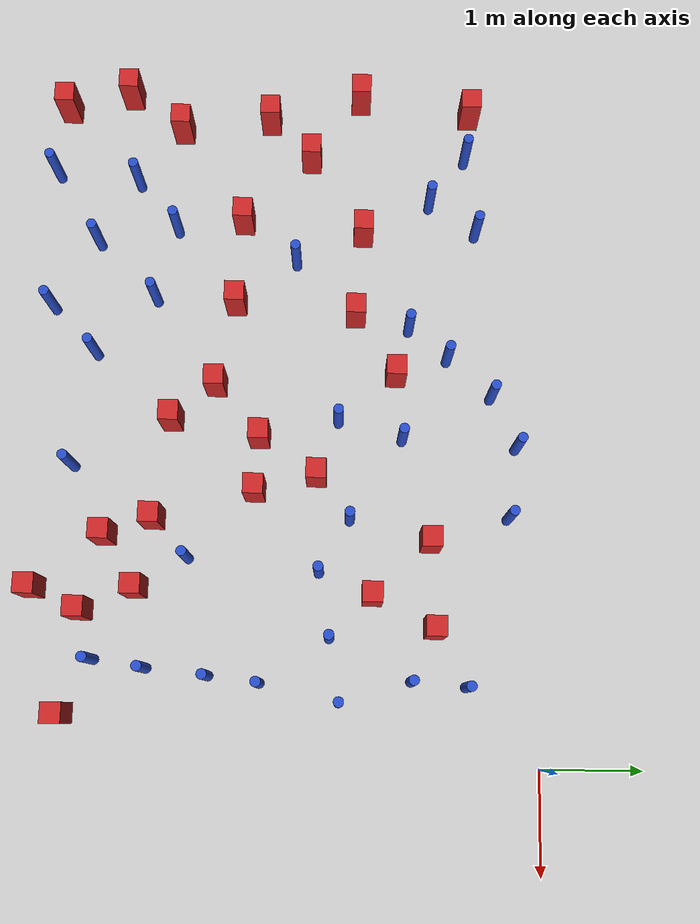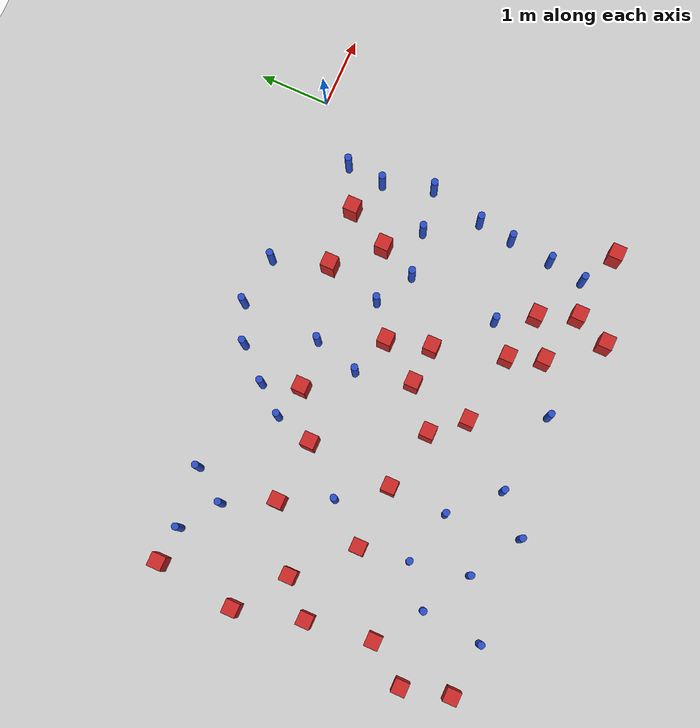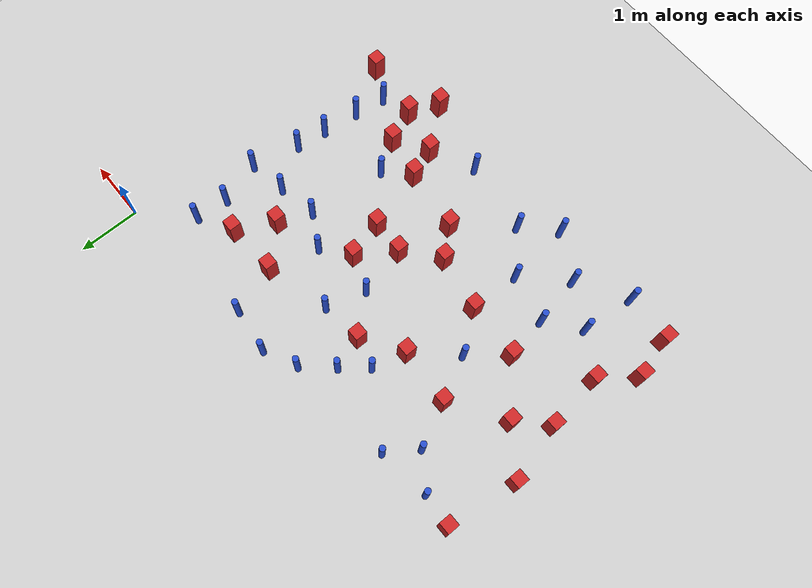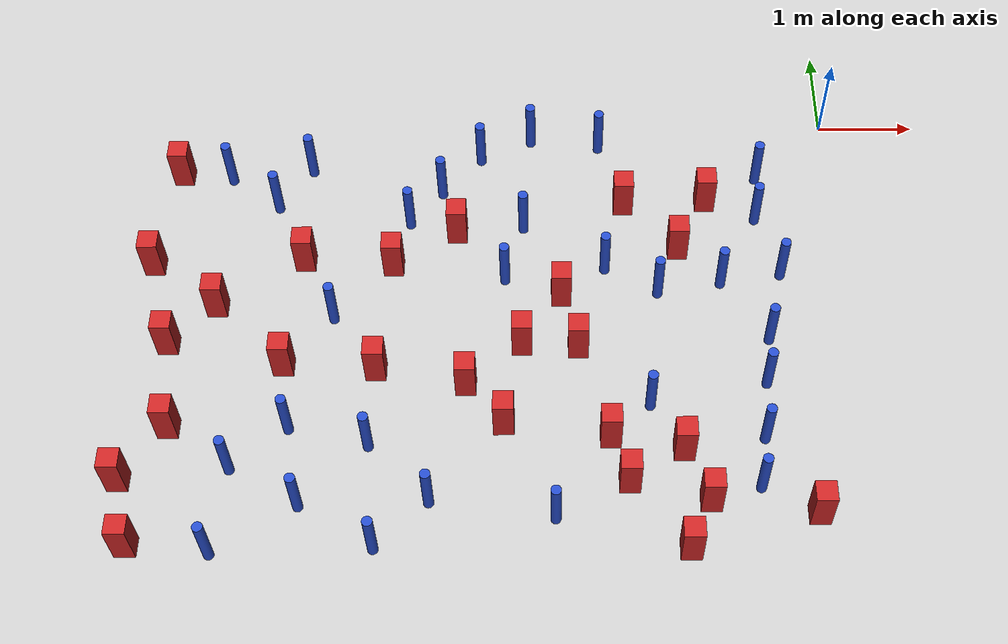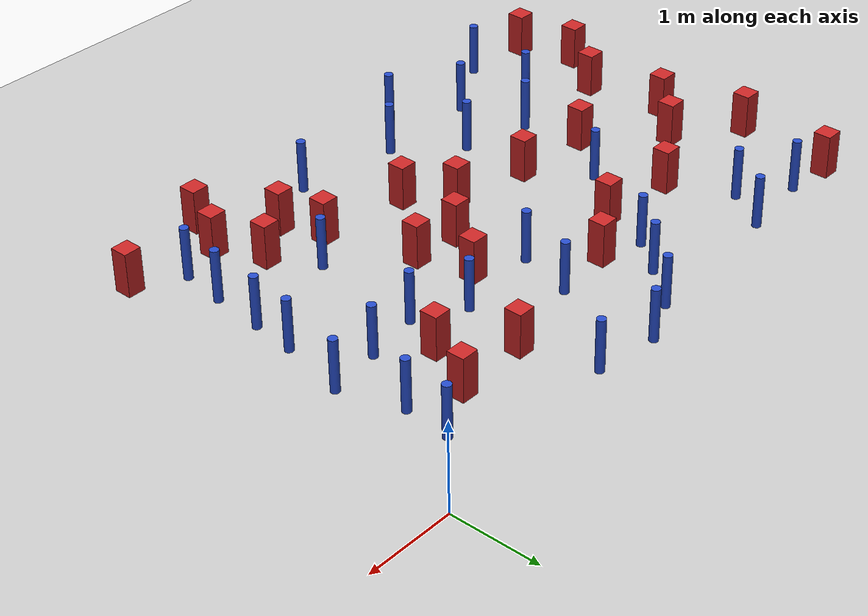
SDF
<sdf version="1.6">
 <world name="default">
  <model name="ground_plane">
   <static>1</static>
   <link name="link">
    <collision name="collision">
     <geometry><plane><normal>0 0 1</normal><size>100 100</size></plane></geometry>
     <surface><friction><ode><mu>100</mu><mu2>50</mu2></ode></friction></surface>
    </collision>
    <visual name="visual">
     <cast_shadows>0</cast_shadows>
     <geometry><plane><normal>0 0 1</normal><size>100 100</size></plane></geometry>
     <material>
      <ambient>1.0 1.0 1.0 1.0</ambient>
      <diffuse>0.8 0.8 0.8 1.0</diffuse>
      <specular>0.01 0.01 0.01 1.000000</specular>
     </material>
    </visual>
   </link>
  </model>
  <model name="pole_obstacle10">
   <static>true</static>
   <pose>-0.762527081774 -2.71304508485 -9.47619616065e-06 5.49618799737e-07 2.36310414066e-07 -1.55090534797e-07</pose>
   <link name="link">
    <pose>0 0 0.3 0 -0 0</pose>
    <inertial>
     <mass>1</mass>
     <inertia><ixx>0.145833</ixx><ixy>0</ixy><ixz>0</ixz><iyy>0.145833</iyy><iyz>0</iyz><izz>0.125</izz></inertia>
    </inertial>
    <collision name="collision">
     <geometry><cylinder><radius>0.05</radius><length>.6</length></cylinder></geometry>
    </collision>
    <visual name="visual">
     <geometry><cylinder><radius>0.05</radius><length>.6</length></cylinder></geometry>
     <material>
      <script><name>Gazebo/Blue</name><uri>file://media/materials/scripts/gazebo.material</uri></script>
     </material>
    </visual>
   </link>
  </model>
  <model name="square_post_obstacle21">
   <static>true</static>
   <pose>-6.27264287447 -2.32266422452 -6.11067671241e-07 -5.50515727128e-06 -8.79689657224e-07 2.37013304536e-05</pose>
   <link name="link">
    <pose>0 0 0.25 0 -0 0</pose>
    <inertial>
     <mass>100</mass>
     <inertia>
      <ixx>0.166667</ixx>
      <ixy>0</ixy>
      <ixz>0</ixz>
      <iyy>0.166667</iyy>
      <iyz>0</iyz>
      <izz>0.166667</izz>
     </inertia>
    </inertial>
    <collision name="collision"><geometry><box><size>.2 .2 .5</size></box></geometry></collision>
    <visual name="visual">
     <geometry><box><size>.2 .2 .5</size></box></geometry>
     <material>
      <script><name>Gazebo/Red</name><uri>file://media/materials/scripts/gazebo.material</uri></script>
     </material>
    </visual>
   </link>
  </model>
  <model name="pole_obstacle18">
   <static>true</static>
   <pose>-2.88940660347 -4.65598484103 -9.47619616065e-06 5.49618799738e-07 2.3631041406e-07 -1.55090534801e-07</pose>
   <link name="link">
    <pose>0 0 0.3 0 -0 0</pose>
    <inertial>
     <mass>1</mass>
     <inertia><ixx>0.145833</ixx><ixy>0</ixy><ixz>0</ixz><iyy>0.145833</iyy><iyz>0</iyz><izz>0.125</izz></inertia>
    </inertial>
    <collision name="collision">
     <geometry><cylinder><radius>0.05</radius><length>.6</length></cylinder></geometry>
    </collision>
    <visual name="visual">
     <geometry><cylinder><radius>0.05</radius><length>.6</length></cylinder></geometry>
     <material>
      <script><name>Gazebo/Blue</name><uri>file://media/materials/scripts/gazebo.material</uri></script>
     </material>
    </visual>
   </link>
  </model>
  <model name="pole_obstacle19">
   <static>true</static>
   <pose>-3.13910876527 -0.190163069557 -9.47619616065e-06 5.49618799737e-07 2.36310414076e-07 -1.55090534792e-07</pose>
   <link name="link">
    <pose>0 0 0.3 0 -0 0</pose>
    <inertial>
     <mass>1</mass>
     <inertia><ixx>0.145833</ixx><ixy>0</ixy><ixz>0</ixz><iyy>0.145833</iyy><iyz>0</iyz><izz>0.125</izz></inertia>
    </inertial>
    <collision name="collision">
     <geometry><cylinder><radius>0.05</radius><length>.6</length></cylinder></geometry>
    </collision>
    <visual name="visual">
     <geometry><cylinder><radius>0.05</radius><length>.6</length></cylinder></geometry>
     <material>
      <script><name>Gazebo/Blue</name><uri>file://media/materials/scripts/gazebo.material</uri></script>
     </material>
    </visual>
   </link>
  </model>
  <model name="pole_obstacle33">
   <static>true</static>
   <pose>-3.66587896424 -0.441717354994 -9.47619616065e-06 5.49618799737e-07 2.36310414038e-07 -1.55090534814e-07</pose>
   <link name="link">
    <pose>0 0 0.3 0 -0 0</pose>
    <inertial>
     <mass>1</mass>
     <inertia><ixx>0.145833</ixx><ixy>0</ixy><ixz>0</ixz><iyy>0.145833</iyy><iyz>0</iyz><izz>0.125</izz></inertia>
    </inertial>
    <collision name="collision">
     <geometry><cylinder><radius>0.05</radius><length>.6</length></cylinder></geometry>
    </collision>
    <visual name="visual">
     <geometry><cylinder><radius>0.05</radius><length>.6</length></cylinder></geometry>
     <material>
      <script><name>Gazebo/Blue</name><uri>file://media/materials/scripts/gazebo.material</uri></script>
     </material>
    </visual>
   </link>
  </model>
  <model name="pole_obstacle36">
   <static>true</static>
   <pose>-4.56441217744 -4.95893135616 -9.47619616065e-06 5.49618799737e-07 2.36310414037e-07 -1.55090534814e-07</pose>
   <link name="link">
    <pose>0 0 0.3 0 -0 0</pose>
    <inertial>
     <mass>1</mass>
     <inertia><ixx>0.145833</ixx><ixy>0</ixy><ixz>0</ixz><iyy>0.145833</iyy><iyz>0</iyz><izz>0.125</izz></inertia>
    </inertial>
    <collision name="collision">
     <geometry><cylinder><radius>0.05</radius><length>.6</length></cylinder></geometry>
    </collision>
    <visual name="visual">
     <geometry><cylinder><radius>0.05</radius><length>.6</length></cylinder></geometry>
     <material>
      <script><name>Gazebo/Blue</name><uri>file://media/materials/scripts/gazebo.material</uri></script>
     </material>
    </visual>
   </link>
  </model>
  <model name="square_post_obstacle36">
   <static>true</static>
   <pose>-1.65390976235 -4.96892115099 -6.11067671241e-07 -5.50515727128e-06 -8.79689657224e-07 2.37013304536e-05</pose>
   <link name="link">
    <pose>0 0 0.25 0 -0 0</pose>
    <inertial>
     <mass>100</mass>
     <inertia>
      <ixx>0.166667</ixx>
      <ixy>0</ixy>
      <ixz>0</ixz>
      <iyy>0.166667</iyy>
      <iyz>0</iyz>
      <izz>0.166667</izz>
     </inertia>
    </inertial>
    <collision name="collision"><geometry><box><size>.2 .2 .5</size></box></geometry></collision>
    <visual name="visual">
     <geometry><box><size>.2 .2 .5</size></box></geometry>
     <material>
      <script><name>Gazebo/Red</name><uri>file://media/materials/scripts/gazebo.material</uri></script>
     </material>
    </visual>
   </link>
  </model>
  <model name="pole_obstacle43">
   <static>true</static>
   <pose>-4.06319651542 -0.887867122076 -9.47619616065e-06 5.49618799737e-07 2.36310414061e-07 -1.550905348e-07</pose>
   <link name="link">
    <pose>0 0 0.3 0 -0 0</pose>
    <inertial>
     <mass>1</mass>
     <inertia><ixx>0.145833</ixx><ixy>0</ixy><ixz>0</ixz><iyy>0.145833</iyy><iyz>0</iyz><izz>0.125</izz></inertia>
    </inertial>
    <collision name="collision">
     <geometry><cylinder><radius>0.05</radius><length>.6</length></cylinder></geometry>
    </collision>
    <visual name="visual">
     <geometry><cylinder><radius>0.05</radius><length>.6</length></cylinder></geometry>
     <material>
      <script><name>Gazebo/Blue</name><uri>file://media/materials/scripts/gazebo.material</uri></script>
     </material>
    </visual>
   </link>
  </model>
  <model name="pole_obstacle44">
   <static>true</static>
   <pose>-0.590644551157 -1.93663211673 -9.47619616065e-06 5.49618799738e-07 2.36310414061e-07 -1.55090534801e-07</pose>
   <link name="link">
    <pose>0 0 0.3 0 -0 0</pose>
    <inertial>
     <mass>1</mass>
     <inertia><ixx>0.145833</ixx><ixy>0</ixy><ixz>0</ixz><iyy>0.145833</iyy><iyz>0</iyz><izz>0.125</izz></inertia>
    </inertial>
    <collision name="collision">
     <geometry><cylinder><radius>0.05</radius><length>.6</length></cylinder></geometry>
    </collision>
    <visual name="visual">
     <geometry><cylinder><radius>0.05</radius><length>.6</length></cylinder></geometry>
     <material>
      <script><name>Gazebo/Blue</name><uri>file://media/materials/scripts/gazebo.material</uri></script>
     </material>
    </visual>
   </link>
  </model>
  <model name="square_post_obstacle52">
   <static>true</static>
   <pose>-2.17368624097 -1.05751110527 -6.11067671241e-07 -5.50515727128e-06 -8.79689657224e-07 2.37013304536e-05</pose>
   <link name="link">
    <pose>0 0 0.25 0 -0 0</pose>
    <inertial>
     <mass>100</mass>
     <inertia>
      <ixx>0.166667</ixx>
      <ixy>0</ixy>
      <ixz>0</ixz>
      <iyy>0.166667</iyy>
      <iyz>0</iyz>
      <izz>0.166667</izz>
     </inertia>
    </inertial>
    <collision name="collision"><geometry><box><size>.2 .2 .5</size></box></geometry></collision>
    <visual name="visual">
     <geometry><box><size>.2 .2 .5</size></box></geometry>
     <material>
      <script><name>Gazebo/Red</name><uri>file://media/materials/scripts/gazebo.material</uri></script>
     </material>
    </visual>
   </link>
  </model>
  <model name="pole_obstacle51">
   <static>true</static>
   <pose>-5.09885625373 -2.45490323686 -9.47619616065e-06 5.49618799738e-07 2.36310414051e-07 -1.55090534805e-07</pose>
   <link name="link">
    <pose>0 0 0.3 0 -0 0</pose>
    <inertial>
     <mass>1</mass>
     <inertia><ixx>0.145833</ixx><ixy>0</ixy><ixz>0</ixz><iyy>0.145833</iyy><iyz>0</iyz><izz>0.125</izz></inertia>
    </inertial>
    <collision name="collision">
     <geometry><cylinder><radius>0.05</radius><length>.6</length></cylinder></geometry>
    </collision>
    <visual name="visual">
     <geometry><cylinder><radius>0.05</radius><length>.6</length></cylinder></geometry>
     <material>
      <script><name>Gazebo/Blue</name><uri>file://media/materials/scripts/gazebo.material</uri></script>
     </material>
    </visual>
   </link>
  </model>
  <model name="square_post_obstacle63">
   <static>true</static>
   <pose>-2.66006244372 -2.80937608905 -6.11067671241e-07 -5.50515727128e-06 -8.79689657224e-07 2.37013304536e-05</pose>
   <link name="link">
    <pose>0 0 0.25 0 -0 0</pose>
    <inertial>
     <mass>100</mass>
     <inertia>
      <ixx>0.166667</ixx>
      <ixy>0</ixy>
      <ixz>0</ixz>
      <iyy>0.166667</iyy>
      <iyz>0</iyz>
      <izz>0.166667</izz>
     </inertia>
    </inertial>
    <collision name="collision"><geometry><box><size>.2 .2 .5</size></box></geometry></collision>
    <visual name="visual">
     <geometry><box><size>.2 .2 .5</size></box></geometry>
     <material>
      <script><name>Gazebo/Red</name><uri>file://media/materials/scripts/gazebo.material</uri></script>
     </material>
    </visual>
   </link>
  </model>
  <model name="square_post_obstacle66">
   <static>true</static>
   <pose>-0.446047604808 -4.6206558313 -6.11067671241e-07 -5.50515727128e-06 -8.79689657224e-07 2.37013304536e-05</pose>
   <link name="link">
    <pose>0 0 0.25 0 -0 0</pose>
    <inertial>
     <mass>100</mass>
     <inertia>
      <ixx>0.166667</ixx>
      <ixy>0</ixy>
      <ixz>0</ixz>
      <iyy>0.166667</iyy>
      <iyz>0</iyz>
      <izz>0.166667</izz>
     </inertia>
    </inertial>
    <collision name="collision"><geometry><box><size>.2 .2 .5</size></box></geometry></collision>
    <visual name="visual">
     <geometry><box><size>.2 .2 .5</size></box></geometry>
     <material>
      <script><name>Gazebo/Red</name><uri>file://media/materials/scripts/gazebo.material</uri></script>
     </material>
    </visual>
   </link>
  </model>
  <model name="pole_obstacle67">
   <static>true</static>
   <pose>-5.45048588617 -0.590707836343 -9.47619616065e-06 5.49618799737e-07 2.36310414061e-07 -1.550905348e-07</pose>
   <link name="link">
    <pose>0 0 0.3 0 -0 0</pose>
    <inertial>
     <mass>1</mass>
     <inertia><ixx>0.145833</ixx><ixy>0</ixy><ixz>0</ixz><iyy>0.145833</iyy><iyz>0</iyz><izz>0.125</izz></inertia>
    </inertial>
    <collision name="collision">
     <geometry><cylinder><radius>0.05</radius><length>.6</length></cylinder></geometry>
    </collision>
    <visual name="visual">
     <geometry><cylinder><radius>0.05</radius><length>.6</length></cylinder></geometry>
     <material>
      <script><name>Gazebo/Blue</name><uri>file://media/materials/scripts/gazebo.material</uri></script>
     </material>
    </visual>
   </link>
  </model>
  <model name="pole_obstacle68">
   <static>true</static>
   <pose>-4.67126712238 -3.89984883947 -9.47619616065e-06 5.49618799738e-07 2.36310414051e-07 -1.55090534805e-07</pose>
   <link name="link">
    <pose>0 0 0.3 0 -0 0</pose>
    <inertial>
     <mass>1</mass>
     <inertia><ixx>0.145833</ixx><ixy>0</ixy><ixz>0</ixz><iyy>0.145833</iyy><iyz>0</iyz><izz>0.125</izz></inertia>
    </inertial>
    <collision name="collision">
     <geometry><cylinder><radius>0.05</radius><length>.6</length></cylinder></geometry>
    </collision>
    <visual name="visual">
     <geometry><cylinder><radius>0.05</radius><length>.6</length></cylinder></geometry>
     <material>
      <script><name>Gazebo/Blue</name><uri>file://media/materials/scripts/gazebo.material</uri></script>
     </material>
    </visual>
   </link>
  </model>
  <model name="pole_obstacle70">
   <static>true</static>
   <pose>-1.20762585771 -2.03953762843 -9.47619616065e-06 5.49618799738e-07 2.36310414048e-07 -1.55090534806e-07</pose>
   <link name="link">
    <pose>0 0 0.3 0 -0 0</pose>
    <inertial>
     <mass>1</mass>
     <inertia><ixx>0.145833</ixx><ixy>0</ixy><ixz>0</ixz><iyy>0.145833</iyy><iyz>0</iyz><izz>0.125</izz></inertia>
    </inertial>
    <collision name="collision">
     <geometry><cylinder><radius>0.05</radius><length>.6</length></cylinder></geometry>
    </collision>
    <visual name="visual">
     <geometry><cylinder><radius>0.05</radius><length>.6</length></cylinder></geometry>
     <material>
      <script><name>Gazebo/Blue</name><uri>file://media/materials/scripts/gazebo.material</uri></script>
     </material>
    </visual>
   </link>
  </model>
  <model name="pole_obstacle97">
   <static>true</static>
   <pose>-0.801064155136 -1.23712875148 -9.47619616065e-06 5.49618799738e-07 2.36310414061e-07 -1.55090534801e-07</pose>
   <link name="link">
    <pose>0 0 0.3 0 -0 0</pose>
    <inertial>
     <mass>1</mass>
     <inertia><ixx>0.145833</ixx><ixy>0</ixy><ixz>0</ixz><iyy>0.145833</iyy><iyz>0</iyz><izz>0.125</izz></inertia>
    </inertial>
    <collision name="collision">
     <geometry><cylinder><radius>0.05</radius><length>.6</length></cylinder></geometry>
    </collision>
    <visual name="visual">
     <geometry><cylinder><radius>0.05</radius><length>.6</length></cylinder></geometry>
     <material>
      <script><name>Gazebo/Blue</name><uri>file://media/materials/scripts/gazebo.material</uri></script>
     </material>
    </visual>
   </link>
  </model>
  <model name="pole_obstacle99">
   <static>true</static>
   <pose>-5.28739939241 -4.52884158383 -9.47619616065e-06 5.49618799737e-07 2.36310414037e-07 -1.55090534814e-07</pose>
   <link name="link">
    <pose>0 0 0.3 0 -0 0</pose>
    <inertial>
     <mass>1</mass>
     <inertia><ixx>0.145833</ixx><ixy>0</ixy><ixz>0</ixz><iyy>0.145833</iyy><iyz>0</iyz><izz>0.125</izz></inertia>
    </inertial>
    <collision name="collision">
     <geometry><cylinder><radius>0.05</radius><length>.6</length></cylinder></geometry>
    </collision>
    <visual name="visual">
     <geometry><cylinder><radius>0.05</radius><length>.6</length></cylinder></geometry>
     <material>
      <script><name>Gazebo/Blue</name><uri>file://media/materials/scripts/gazebo.material</uri></script>
     </material>
    </visual>
   </link>
  </model>
  <model name="square_post_obstacle88">
   <static>true</static>
   <pose>-4.52882801511 -1.83013000693 -6.11067671241e-07 -5.50515727128e-06 -8.79689657224e-07 2.37013304536e-05</pose>
   <link name="link">
    <pose>0 0 0.25 0 -0 0</pose>
    <inertial>
     <mass>100</mass>
     <inertia>
      <ixx>0.166667</ixx>
      <ixy>0</ixy>
      <ixz>0</ixz>
      <iyy>0.166667</iyy>
      <iyz>0</iyz>
      <izz>0.166667</izz>
     </inertia>
    </inertial>
    <collision name="collision"><geometry><box><size>.2 .2 .5</size></box></geometry></collision>
    <visual name="visual">
     <geometry><box><size>.2 .2 .5</size></box></geometry>
     <material>
      <script><name>Gazebo/Red</name><uri>file://media/materials/scripts/gazebo.material</uri></script>
     </material>
    </visual>
   </link>
  </model>
  <model name="square_post_obstacle91">
   <static>true</static>
   <pose>-6.59087233438 -3.70005445975 -6.11067671241e-07 -5.50515727128e-06 -8.79689657224e-07 2.37013304536e-05</pose>
   <link name="link">
    <pose>0 0 0.25 0 -0 0</pose>
    <inertial>
     <mass>100</mass>
     <inertia>
      <ixx>0.166667</ixx>
      <ixy>0</ixy>
      <ixz>0</ixz>
      <iyy>0.166667</iyy>
      <iyz>0</iyz>
      <izz>0.166667</izz>
     </inertia>
    </inertial>
    <collision name="collision"><geometry><box><size>.2 .2 .5</size></box></geometry></collision>
    <visual name="visual">
     <geometry><box><size>.2 .2 .5</size></box></geometry>
     <material>
      <script><name>Gazebo/Red</name><uri>file://media/materials/scripts/gazebo.material</uri></script>
     </material>
    </visual>
   </link>
  </model>
  <model name="pole_obstacle106">
   <static>true</static>
   <pose>-2.37937970633 -1.85859474188 -9.47619616065e-06 5.49618799737e-07 2.36310414072e-07 -1.55090534793e-07</pose>
   <link name="link">
    <pose>0 0 0.3 0 -0 0</pose>
    <inertial>
     <mass>1</mass>
     <inertia><ixx>0.145833</ixx><ixy>0</ixy><ixz>0</ixz><iyy>0.145833</iyy><iyz>0</iyz><izz>0.125</izz></inertia>
    </inertial>
    <collision name="collision">
     <geometry><cylinder><radius>0.05</radius><length>.6</length></cylinder></geometry>
    </collision>
    <visual name="visual">
     <geometry><cylinder><radius>0.05</radius><length>.6</length></cylinder></geometry>
     <material>
      <script><name>Gazebo/Blue</name><uri>file://media/materials/scripts/gazebo.material</uri></script>
     </material>
    </visual>
   </link>
  </model>
  <model name="pole_obstacle109">
   <static>true</static>
   <pose>-3.20994855711 -1.34086780825 -9.47619616065e-06 5.49618799737e-07 2.36310414072e-07 -1.55090534793e-07</pose>
   <link name="link">
    <pose>0 0 0.3 0 -0 0</pose>
    <inertial>
     <mass>1</mass>
     <inertia><ixx>0.145833</ixx><ixy>0</ixy><ixz>0</ixz><iyy>0.145833</iyy><iyz>0</iyz><izz>0.125</izz></inertia>
    </inertial>
    <collision name="collision">
     <geometry><cylinder><radius>0.05</radius><length>.6</length></cylinder></geometry>
    </collision>
    <visual name="visual">
     <geometry><cylinder><radius>0.05</radius><length>.6</length></cylinder></geometry>
     <material>
      <script><name>Gazebo/Blue</name><uri>file://media/materials/scripts/gazebo.material</uri></script>
     </material>
    </visual>
   </link>
  </model>
  <model name="square_post_obstacle98">
   <static>true</static>
   <pose>-1.31746512262 -1.01475249501 -6.11067671241e-07 -5.50515727128e-06 -8.79689657224e-07 2.37013304536e-05</pose>
   <link name="link">
    <pose>0 0 0.25 0 -0 0</pose>
    <inertial>
     <mass>100</mass>
     <inertia>
      <ixx>0.166667</ixx>
      <ixy>0</ixy>
      <ixz>0</ixz>
      <iyy>0.166667</iyy>
      <iyz>0</iyz>
      <izz>0.166667</izz>
     </inertia>
    </inertial>
    <collision name="collision"><geometry><box><size>.2 .2 .5</size></box></geometry></collision>
    <visual name="visual">
     <geometry><box><size>.2 .2 .5</size></box></geometry>
     <material>
      <script><name>Gazebo/Red</name><uri>file://media/materials/scripts/gazebo.material</uri></script>
     </material>
    </visual>
   </link>
  </model>
  <model name="pole_obstacle111">
   <static>true</static>
   <pose>-3.39226416148 -1.98709167912 -9.47619616065e-06 5.49618799737e-07 2.3631041407e-07 -1.55090534794e-07</pose>
   <link name="link">
    <pose>0 0 0.3 0 -0 0</pose>
    <inertial>
     <mass>1</mass>
     <inertia><ixx>0.145833</ixx><ixy>0</ixy><ixz>0</ixz><iyy>0.145833</iyy><iyz>0</iyz><izz>0.125</izz></inertia>
    </inertial>
    <collision name="collision">
     <geometry><cylinder><radius>0.05</radius><length>.6</length></cylinder></geometry>
    </collision>
    <visual name="visual">
     <geometry><cylinder><radius>0.05</radius><length>.6</length></cylinder></geometry>
     <material>
      <script><name>Gazebo/Blue</name><uri>file://media/materials/scripts/gazebo.material</uri></script>
     </material>
    </visual>
   </link>
  </model>
  <model name="square_post_obstacle104">
   <static>true</static>
   <pose>-1.63022687932 -1.62762404748 -6.11067671241e-07 -5.50515727128e-06 -8.79689657224e-07 2.37013304536e-05</pose>
   <link name="link">
    <pose>0 0 0.25 0 -0 0</pose>
    <inertial>
     <mass>100</mass>
     <inertia>
      <ixx>0.166667</ixx>
      <ixy>0</ixy>
      <ixz>0</ixz>
      <iyy>0.166667</iyy>
      <iyz>0</iyz>
      <izz>0.166667</izz>
     </inertia>
    </inertial>
    <collision name="collision"><geometry><box><size>.2 .2 .5</size></box></geometry></collision>
    <visual name="visual">
     <geometry><box><size>.2 .2 .5</size></box></geometry>
     <material>
      <script><name>Gazebo/Red</name><uri>file://media/materials/scripts/gazebo.material</uri></script>
     </material>
    </visual>
   </link>
  </model>
  <model name="square_post_obstacle110">
   <static>true</static>
   <pose>-2.82441463042 -2.19778586457 -6.11067671241e-07 -5.50515727128e-06 -8.79689657224e-07 2.37013304536e-05</pose>
   <link name="link">
    <pose>0 0 0.25 0 -0 0</pose>
    <inertial>
     <mass>100</mass>
     <inertia>
      <ixx>0.166667</ixx>
      <ixy>0</ixy>
      <ixz>0</ixz>
      <iyy>0.166667</iyy>
      <iyz>0</iyz>
      <izz>0.166667</izz>
     </inertia>
    </inertial>
    <collision name="collision"><geometry><box><size>.2 .2 .5</size></box></geometry></collision>
    <visual name="visual">
     <geometry><box><size>.2 .2 .5</size></box></geometry>
     <material>
      <script><name>Gazebo/Red</name><uri>file://media/materials/scripts/gazebo.material</uri></script>
     </material>
    </visual>
   </link>
  </model>
  <model name="square_post_obstacle114">
   <static>true</static>
   <pose>-5.54897705205 -3.01432559239 -6.11067671241e-07 -5.50515727128e-06 -8.79689657224e-07 2.37013304536e-05</pose>
   <link name="link">
    <pose>0 0 0.25 0 -0 0</pose>
    <inertial>
     <mass>100</mass>
     <inertia>
      <ixx>0.166667</ixx>
      <ixy>0</ixy>
      <ixz>0</ixz>
      <iyy>0.166667</iyy>
      <iyz>0</iyz>
      <izz>0.166667</izz>
     </inertia>
    </inertial>
    <collision name="collision"><geometry><box><size>.2 .2 .5</size></box></geometry></collision>
    <visual name="visual">
     <geometry><box><size>.2 .2 .5</size></box></geometry>
     <material>
      <script><name>Gazebo/Red</name><uri>file://media/materials/scripts/gazebo.material</uri></script>
     </material>
    </visual>
   </link>
  </model>
  <model name="pole_obstacle132">
   <static>true</static>
   <pose>-2.41749561613 -0.277826415895 -9.4761961606e-06 5.49618799729e-07 2.36310414007e-07 -1.55090534821e-07</pose>
   <link name="link">
    <pose>0 0 0.3 0 -0 0</pose>
    <inertial>
     <mass>1</mass>
     <inertia><ixx>0.145833</ixx><ixy>0</ixy><ixz>0</ixz><iyy>0.145833</iyy><iyz>0</iyz><izz>0.125</izz></inertia>
    </inertial>
    <collision name="collision">
     <geometry><cylinder><radius>0.05</radius><length>.6</length></cylinder></geometry>
    </collision>
    <visual name="visual">
     <geometry><cylinder><radius>0.05</radius><length>.6</length></cylinder></geometry>
     <material>
      <script><name>Gazebo/Blue</name><uri>file://media/materials/scripts/gazebo.material</uri></script>
     </material>
    </visual>
   </link>
  </model>
  <model name="pole_obstacle135">
   <static>true</static>
   <pose>-1.97019567955 -3.45973512906 -9.47619616065e-06 5.49618799737e-07 2.36310414076e-07 -1.55090534791e-07</pose>
   <link name="link">
    <pose>0 0 0.3 0 -0 0</pose>
    <inertial>
     <mass>1</mass>
     <inertia><ixx>0.145833</ixx><ixy>0</ixy><ixz>0</ixz><iyy>0.145833</iyy><iyz>0</iyz><izz>0.125</izz></inertia>
    </inertial>
    <collision name="collision">
     <geometry><cylinder><radius>0.05</radius><length>.6</length></cylinder></geometry>
    </collision>
    <visual name="visual">
     <geometry><cylinder><radius>0.05</radius><length>.6</length></cylinder></geometry>
     <material>
      <script><name>Gazebo/Blue</name><uri>file://media/materials/scripts/gazebo.material</uri></script>
     </material>
    </visual>
   </link>
  </model>
  <model name="square_post_obstacle118">
   <static>true</static>
   <pose>-6.81348807993 -0.652634966448 -6.11067671241e-07 -5.50515727128e-06 -8.79689657224e-07 2.37013304536e-05</pose>
   <link name="link">
    <pose>0 0 0.25 0 -0 0</pose>
    <inertial>
     <mass>100</mass>
     <inertia>
      <ixx>0.166667</ixx>
      <ixy>0</ixy>
      <ixz>0</ixz>
      <iyy>0.166667</iyy>
      <iyz>0</iyz>
      <izz>0.166667</izz>
     </inertia>
    </inertial>
    <collision name="collision"><geometry><box><size>.2 .2 .5</size></box></geometry></collision>
    <visual name="visual">
     <geometry><box><size>.2 .2 .5</size></box></geometry>
     <material>
      <script><name>Gazebo/Red</name><uri>file://media/materials/scripts/gazebo.material</uri></script>
     </material>
    </visual>
   </link>
  </model>
  <model name="square_post_obstacle119">
   <static>true</static>
   <pose>-3.75686245181 -3.24042022437 -6.11067671241e-07 -5.50515727128e-06 -8.79689657224e-07 2.37013304536e-05</pose>
   <link name="link">
    <pose>0 0 0.25 0 -0 0</pose>
    <inertial>
     <mass>100</mass>
     <inertia>
      <ixx>0.166667</ixx>
      <ixy>0</ixy>
      <ixz>0</ixz>
      <iyy>0.166667</iyy>
      <iyz>0</iyz>
      <izz>0.166667</izz>
     </inertia>
    </inertial>
    <collision name="collision"><geometry><box><size>.2 .2 .5</size></box></geometry></collision>
    <visual name="visual">
     <geometry><box><size>.2 .2 .5</size></box></geometry>
     <material>
      <script><name>Gazebo/Red</name><uri>file://media/materials/scripts/gazebo.material</uri></script>
     </material>
    </visual>
   </link>
  </model>
  <model name="square_post_obstacle120">
   <static>true</static>
   <pose>-1.66895569411 -3.95183333278 -6.11067671241e-07 -5.50515727128e-06 -8.79689657224e-07 2.37013304536e-05</pose>
   <link name="link">
    <pose>0 0 0.25 0 -0 0</pose>
    <inertial>
     <mass>100</mass>
     <inertia>
      <ixx>0.166667</ixx>
      <ixy>0</ixy>
      <ixz>0</ixz>
      <iyy>0.166667</iyy>
      <iyz>0</iyz>
      <izz>0.166667</izz>
     </inertia>
    </inertial>
    <collision name="collision"><geometry><box><size>.2 .2 .5</size></box></geometry></collision>
    <visual name="visual">
     <geometry><box><size>.2 .2 .5</size></box></geometry>
     <material>
      <script><name>Gazebo/Red</name><uri>file://media/materials/scripts/gazebo.material</uri></script>
     </material>
    </visual>
   </link>
  </model>
  <model name="square_post_obstacle122">
   <static>true</static>
   <pose>-3.38270355711 -3.67146647143 -6.11067671241e-07 -5.50515727128e-06 -8.79689657224e-07 2.37013304536e-05</pose>
   <link name="link">
    <pose>0 0 0.25 0 -0 0</pose>
    <inertial>
     <mass>100</mass>
     <inertia>
      <ixx>0.166667</ixx>
      <ixy>0</ixy>
      <ixz>0</ixz>
      <iyy>0.166667</iyy>
      <iyz>0</iyz>
      <izz>0.166667</izz>
     </inertia>
    </inertial>
    <collision name="collision"><geometry><box><size>.2 .2 .5</size></box></geometry></collision>
    <visual name="visual">
     <geometry><box><size>.2 .2 .5</size></box></geometry>
     <material>
      <script><name>Gazebo/Red</name><uri>file://media/materials/scripts/gazebo.material</uri></script>
     </material>
    </visual>
   </link>
  </model>
  <model name="square_post_obstacle127">
   <static>true</static>
   <pose>-6.98967493398 -4.2656787429 -6.11067671241e-07 -5.50515727128e-06 -8.79689657224e-07 2.37013304536e-05</pose>
   <link name="link">
    <pose>0 0 0.25 0 -0 0</pose>
    <inertial>
     <mass>100</mass>
     <inertia>
      <ixx>0.166667</ixx>
      <ixy>0</ixy>
      <ixz>0</ixz>
      <iyy>0.166667</iyy>
      <iyz>0</iyz>
      <izz>0.166667</izz>
     </inertia>
    </inertial>
    <collision name="collision"><geometry><box><size>.2 .2 .5</size></box></geometry></collision>
    <visual name="visual">
     <geometry><box><size>.2 .2 .5</size></box></geometry>
     <material>
      <script><name>Gazebo/Red</name><uri>file://media/materials/scripts/gazebo.material</uri></script>
     </material>
    </visual>
   </link>
  </model>
  <model name="square_post_obstacle129">
   <static>true</static>
   <pose>-5.43255964642 -1.7643295552 -6.11067671241e-07 -5.50515727128e-06 -8.79689657224e-07 2.37013304536e-05</pose>
   <link name="link">
    <pose>0 0 0.25 0 -0 0</pose>
    <inertial>
     <mass>100</mass>
     <inertia>
      <ixx>0.166667</ixx>
      <ixy>0</ixy>
      <ixz>0</ixz>
      <iyy>0.166667</iyy>
      <iyz>0</iyz>
      <izz>0.166667</izz>
     </inertia>
    </inertial>
    <collision name="collision"><geometry><box><size>.2 .2 .5</size></box></geometry></collision>
    <visual name="visual">
     <geometry><box><size>.2 .2 .5</size></box></geometry>
     <material>
      <script><name>Gazebo/Red</name><uri>file://media/materials/scripts/gazebo.material</uri></script>
     </material>
    </visual>
   </link>
  </model>
  <model name="pole_obstacle142">
   <static>true</static>
   <pose>-4.38366672911 -1.28236994958 -9.47619616065e-06 5.49618799738e-07 2.36310414071e-07 -1.55090534796e-07</pose>
   <link name="link">
    <pose>0 0 0.3 0 -0 0</pose>
    <inertial>
     <mass>1</mass>
     <inertia><ixx>0.145833</ixx><ixy>0</ixy><ixz>0</ixz><iyy>0.145833</iyy><iyz>0</iyz><izz>0.125</izz></inertia>
    </inertial>
    <collision name="collision">
     <geometry><cylinder><radius>0.05</radius><length>.6</length></cylinder></geometry>
    </collision>
    <visual name="visual">
     <geometry><cylinder><radius>0.05</radius><length>.6</length></cylinder></geometry>
     <material>
      <script><name>Gazebo/Blue</name><uri>file://media/materials/scripts/gazebo.material</uri></script>
     </material>
    </visual>
   </link>
  </model>
  <model name="square_post_obstacle143">
   <static>true</static>
   <pose>-2.19420422495 -4.28955291842 -6.11067671241e-07 -5.50515727128e-06 -8.79689657224e-07 2.37013304536e-05</pose>
   <link name="link">
    <pose>0 0 0.25 0 -0 0</pose>
    <inertial>
     <mass>100</mass>
     <inertia>
      <ixx>0.166667</ixx>
      <ixy>0</ixy>
      <ixz>0</ixz>
      <iyy>0.166667</iyy>
      <iyz>0</iyz>
      <izz>0.166667</izz>
     </inertia>
    </inertial>
    <collision name="collision"><geometry><box><size>.2 .2 .5</size></box></geometry></collision>
    <visual name="visual">
     <geometry><box><size>.2 .2 .5</size></box></geometry>
     <material>
      <script><name>Gazebo/Red</name><uri>file://media/materials/scripts/gazebo.material</uri></script>
     </material>
    </visual>
   </link>
  </model>
  <model name="pole_obstacle155">
   <static>true</static>
   <pose>-6.2956409207 -0.700075677641 -9.47619616065e-06 5.49618799737e-07 2.36310414061e-07 -1.550905348e-07</pose>
   <link name="link">
    <pose>0 0 0.3 0 -0 0</pose>
    <inertial>
     <mass>1</mass>
     <inertia><ixx>0.145833</ixx><ixy>0</ixy><ixz>0</ixz><iyy>0.145833</iyy><iyz>0</iyz><izz>0.125</izz></inertia>
    </inertial>
    <collision name="collision">
     <geometry><cylinder><radius>0.05</radius><length>.6</length></cylinder></geometry>
    </collision>
    <visual name="visual">
     <geometry><cylinder><radius>0.05</radius><length>.6</length></cylinder></geometry>
     <material>
      <script><name>Gazebo/Blue</name><uri>file://media/materials/scripts/gazebo.material</uri></script>
     </material>
    </visual>
   </link>
  </model>
  <model name="pole_obstacle176">
   <static>true</static>
   <pose>-5.44651369368 -3.7132350492 -9.47619616065e-06 5.49618799738e-07 2.36310414051e-07 -1.55090534805e-07</pose>
   <link name="link">
    <pose>0 0 0.3 0 -0 0</pose>
    <inertial>
     <mass>1</mass>
     <inertia><ixx>0.145833</ixx><ixy>0</ixy><ixz>0</ixz><iyy>0.145833</iyy><iyz>0</iyz><izz>0.125</izz></inertia>
    </inertial>
    <collision name="collision">
     <geometry><cylinder><radius>0.05</radius><length>.6</length></cylinder></geometry>
    </collision>
    <visual name="visual">
     <geometry><cylinder><radius>0.05</radius><length>.6</length></cylinder></geometry>
     <material>
      <script><name>Gazebo/Blue</name><uri>file://media/materials/scripts/gazebo.material</uri></script>
     </material>
    </visual>
   </link>
  </model>
  <model name="pole_obstacle179">
   <static>true</static>
   <pose>-6.05857236577 -5.00855887609 -9.47619616065e-06 5.49618799737e-07 2.36310414037e-07 -1.55090534814e-07</pose>
   <link name="link">
    <pose>0 0 0.3 0 -0 0</pose>
    <inertial>
     <mass>1</mass>
     <inertia><ixx>0.145833</ixx><ixy>0</ixy><ixz>0</ixz><iyy>0.145833</iyy><iyz>0</iyz><izz>0.125</izz></inertia>
    </inertial>
    <collision name="collision">
     <geometry><cylinder><radius>0.05</radius><length>.6</length></cylinder></geometry>
    </collision>
    <visual name="visual">
     <geometry><cylinder><radius>0.05</radius><length>.6</length></cylinder></geometry>
     <material>
      <script><name>Gazebo/Blue</name><uri>file://media/materials/scripts/gazebo.material</uri></script>
     </material>
    </visual>
   </link>
  </model>
  <model name="square_post_obstacle170">
   <static>true</static>
   <pose>-1.44357810413 -4.48357871199 -6.11067671241e-07 -5.50515727128e-06 -8.79689657224e-07 2.37013304536e-05</pose>
   <link name="link">
    <pose>0 0 0.25 0 -0 0</pose>
    <inertial>
     <mass>100</mass>
     <inertia>
      <ixx>0.166667</ixx>
      <ixy>0</ixy>
      <ixz>0</ixz>
      <iyy>0.166667</iyy>
      <iyz>0</iyz>
      <izz>0.166667</izz>
     </inertia>
    </inertial>
    <collision name="collision"><geometry><box><size>.2 .2 .5</size></box></geometry></collision>
    <visual name="visual">
     <geometry><box><size>.2 .2 .5</size></box></geometry>
     <material>
      <script><name>Gazebo/Red</name><uri>file://media/materials/scripts/gazebo.material</uri></script>
     </material>
    </visual>
   </link>
  </model>
  <model name="square_post_obstacle172">
   <static>true</static>
   <pose>-6.96872891381 -1.80899147446 -6.11067671241e-07 -5.50515727128e-06 -8.79689657224e-07 2.37013304536e-05</pose>
   <link name="link">
    <pose>0 0 0.25 0 -0 0</pose>
    <inertial>
     <mass>100</mass>
     <inertia>
      <ixx>0.166667</ixx>
      <ixy>0</ixy>
      <ixz>0</ixz>
      <iyy>0.166667</iyy>
      <iyz>0</iyz>
      <izz>0.166667</izz>
     </inertia>
    </inertial>
    <collision name="collision"><geometry><box><size>.2 .2 .5</size></box></geometry></collision>
    <visual name="visual">
     <geometry><box><size>.2 .2 .5</size></box></geometry>
     <material>
      <script><name>Gazebo/Red</name><uri>file://media/materials/scripts/gazebo.material</uri></script>
     </material>
    </visual>
   </link>
  </model>
  <model name="pole_obstacle187">
   <static>true</static>
   <pose>-4.07294539654 -4.49157291161 -9.47619616065e-06 5.49618799737e-07 2.36310414037e-07 -1.55090534814e-07</pose>
   <link name="link">
    <pose>0 0 0.3 0 -0 0</pose>
    <inertial>
     <mass>1</mass>
     <inertia><ixx>0.145833</ixx><ixy>0</ixy><ixz>0</ixz><iyy>0.145833</iyy><iyz>0</iyz><izz>0.125</izz></inertia>
    </inertial>
    <collision name="collision">
     <geometry><cylinder><radius>0.05</radius><length>.6</length></cylinder></geometry>
    </collision>
    <visual name="visual">
     <geometry><cylinder><radius>0.05</radius><length>.6</length></cylinder></geometry>
     <material>
      <script><name>Gazebo/Blue</name><uri>file://media/materials/scripts/gazebo.material</uri></script>
     </material>
    </visual>
   </link>
  </model>
  <model name="square_post_obstacle182">
   <static>true</static>
   <pose>-4.64034781352 -3.06660638012 -6.11067671241e-07 -5.50515727128e-06 -8.79689657224e-07 2.37013304536e-05</pose>
   <link name="link">
    <pose>0 0 0.25 0 -0 0</pose>
    <inertial>
     <mass>100</mass>
     <inertia>
      <ixx>0.166667</ixx>
      <ixy>0</ixy>
      <ixz>0</ixz>
      <iyy>0.166667</iyy>
      <iyz>0</iyz>
      <izz>0.166667</izz>
     </inertia>
    </inertial>
    <collision name="collision"><geometry><box><size>.2 .2 .5</size></box></geometry></collision>
    <visual name="visual">
     <geometry><box><size>.2 .2 .5</size></box></geometry>
     <material>
      <script><name>Gazebo/Red</name><uri>file://media/materials/scripts/gazebo.material</uri></script>
     </material>
    </visual>
   </link>
  </model>
  <model name="square_post_obstacle185">
   <static>true</static>
   <pose>-3.89090580124 -1.412652101 -6.11067671241e-07 -5.50515727128e-06 -8.79689657224e-07 2.37013304536e-05</pose>
   <link name="link">
    <pose>0 0 0.25 0 -0 0</pose>
    <inertial>
     <mass>100</mass>
     <inertia>
      <ixx>0.166667</ixx>
      <ixy>0</ixy>
      <ixz>0</ixz>
      <iyy>0.166667</iyy>
      <iyz>0</iyz>
      <izz>0.166667</izz>
     </inertia>
    </inertial>
    <collision name="collision"><geometry><box><size>.2 .2 .5</size></box></geometry></collision>
    <visual name="visual">
     <geometry><box><size>.2 .2 .5</size></box></geometry>
     <material>
      <script><name>Gazebo/Red</name><uri>file://media/materials/scripts/gazebo.material</uri></script>
     </material>
    </visual>
   </link>
  </model>
  <model name="square_post_obstacle190">
   <static>true</static>
   <pose>-6.71075181332 -2.76503028791 -6.11067671241e-07 -5.50515727128e-06 -8.79689657224e-07 2.37013304536e-05</pose>
   <link name="link">
    <pose>0 0 0.25 0 -0 0</pose>
    <inertial>
     <mass>100</mass>
     <inertia>
      <ixx>0.166667</ixx>
      <ixy>0</ixy>
      <ixz>0</ixz>
      <iyy>0.166667</iyy>
      <iyz>0</iyz>
      <izz>0.166667</izz>
     </inertia>
    </inertial>
    <collision name="collision"><geometry><box><size>.2 .2 .5</size></box></geometry></collision>
    <visual name="visual">
     <geometry><box><size>.2 .2 .5</size></box></geometry>
     <material>
      <script><name>Gazebo/Red</name><uri>file://media/materials/scripts/gazebo.material</uri></script>
     </material>
    </visual>
   </link>
  </model>
  <model name="pole_obstacle190">
   <static>true</static>
   <pose>-0.962485891067 -4.3423703005 -9.47619616065e-06 5.49618799737e-07 2.36310414066e-07 -1.55090534796e-07</pose>
   <link name="link">
    <pose>0 0 0.3 0 -0 0</pose>
    <inertial>
     <mass>1</mass>
     <inertia><ixx>0.145833</ixx><ixy>0</ixy><ixz>0</ixz><iyy>0.145833</iyy><iyz>0</iyz><izz>0.125</izz></inertia>
    </inertial>
    <collision name="collision">
     <geometry><cylinder><radius>0.05</radius><length>.6</length></cylinder></geometry>
    </collision>
    <visual name="visual">
     <geometry><cylinder><radius>0.05</radius><length>.6</length></cylinder></geometry>
     <material>
      <script><name>Gazebo/Blue</name><uri>file://media/materials/scripts/gazebo.material</uri></script>
     </material>
    </visual>
   </link>
  </model>
  <model name="pole_obstacle193">
   <static>true</static>
   <pose>-1.8483207978 -2.15448800364 -9.47619616065e-06 5.49618799737e-07 2.36310414062e-07 -1.55090534798e-07</pose>
   <link name="link">
    <pose>0 0 0.3 0 -0 0</pose>
    <inertial>
     <mass>1</mass>
     <inertia><ixx>0.145833</ixx><ixy>0</ixy><ixz>0</ixz><iyy>0.145833</iyy><iyz>0</iyz><izz>0.125</izz></inertia>
    </inertial>
    <collision name="collision">
     <geometry><cylinder><radius>0.05</radius><length>.6</length></cylinder></geometry>
    </collision>
    <visual name="visual">
     <geometry><cylinder><radius>0.05</radius><length>.6</length></cylinder></geometry>
     <material>
      <script><name>Gazebo/Blue</name><uri>file://media/materials/scripts/gazebo.material</uri></script>
     </material>
    </visual>
   </link>
  </model>
  <model name="pole_obstacle198">
   <static>true</static>
   <pose>-0.757489523505 -0.70200280929 -9.47619616065e-06 5.49618799737e-07 2.36310414058e-07 -1.55090534802e-07</pose>
   <link name="link">
    <pose>0 0 0.3 0 -0 0</pose>
    <inertial>
     <mass>1</mass>
     <inertia><ixx>0.145833</ixx><ixy>0</ixy><ixz>0</ixz><iyy>0.145833</iyy><iyz>0</iyz><izz>0.125</izz></inertia>
    </inertial>
    <collision name="collision">
     <geometry><cylinder><radius>0.05</radius><length>.6</length></cylinder></geometry>
    </collision>
    <visual name="visual">
     <geometry><cylinder><radius>0.05</radius><length>.6</length></cylinder></geometry>
     <material>
      <script><name>Gazebo/Blue</name><uri>file://media/materials/scripts/gazebo.material</uri></script>
     </material>
    </visual>
   </link>
  </model>
  <model name="pole_obstacle202">
   <static>true</static>
   <pose>-0.886812580367 -3.82485778456 -9.47619616065e-06 5.49618799737e-07 2.36310414066e-07 -1.55090534797e-07</pose>
   <link name="link">
    <pose>0 0 0.3 0 -0 0</pose>
    <inertial>
     <mass>1</mass>
     <inertia><ixx>0.145833</ixx><ixy>0</ixy><ixz>0</ixz><iyy>0.145833</iyy><iyz>0</iyz><izz>0.125</izz></inertia>
    </inertial>
    <collision name="collision">
     <geometry><cylinder><radius>0.05</radius><length>.6</length></cylinder></geometry>
    </collision>
    <visual name="visual">
     <geometry><cylinder><radius>0.05</radius><length>.6</length></cylinder></geometry>
     <material>
      <script><name>Gazebo/Blue</name><uri>file://media/materials/scripts/gazebo.material</uri></script>
     </material>
    </visual>
   </link>
  </model>
  <model name="pole_obstacle206">
   <static>true</static>
   <pose>-5.77043122262 -1.07355340706 -9.47619616065e-06 5.49618799738e-07 2.36310414071e-07 -1.55090534796e-07</pose>
   <link name="link">
    <pose>0 0 0.3 0 -0 0</pose>
    <inertial>
     <mass>1</mass>
     <inertia><ixx>0.145833</ixx><ixy>0</ixy><ixz>0</ixz><iyy>0.145833</iyy><iyz>0</iyz><izz>0.125</izz></inertia>
    </inertial>
    <collision name="collision">
     <geometry><cylinder><radius>0.05</radius><length>.6</length></cylinder></geometry>
    </collision>
    <visual name="visual">
     <geometry><cylinder><radius>0.05</radius><length>.6</length></cylinder></geometry>
     <material>
      <script><name>Gazebo/Blue</name><uri>file://media/materials/scripts/gazebo.material</uri></script>
     </material>
    </visual>
   </link>
  </model>
  <model name="pole_obstacle218">
   <static>true</static>
   <pose>-0.823634515341 -3.21605745985 -9.47619616065e-06 5.49618799737e-07 2.36310414066e-07 -1.55090534797e-07</pose>
   <link name="link">
    <pose>0 0 0.3 0 -0 0</pose>
    <inertial>
     <mass>1</mass>
     <inertia><ixx>0.145833</ixx><ixy>0</ixy><ixz>0</ixz><iyy>0.145833</iyy><iyz>0</iyz><izz>0.125</izz></inertia>
    </inertial>
    <collision name="collision">
     <geometry><cylinder><radius>0.05</radius><length>.6</length></cylinder></geometry>
    </collision>
    <visual name="visual">
     <geometry><cylinder><radius>0.05</radius><length>.6</length></cylinder></geometry>
     <material>
      <script><name>Gazebo/Blue</name><uri>file://media/materials/scripts/gazebo.material</uri></script>
     </material>
    </visual>
   </link>
  </model>
  <model name="pole_obstacle219">
   <static>true</static>
   <pose>-5.96796298227 -4.14402002843 -9.47619616065e-06 5.49618799737e-07 2.36310414037e-07 -1.55090534814e-07</pose>
   <link name="link">
    <pose>0 0 0.3 0 -0 0</pose>
    <inertial>
     <mass>1</mass>
     <inertia><ixx>0.145833</ixx><ixy>0</ixy><ixz>0</ixz><iyy>0.145833</iyy><iyz>0</iyz><izz>0.125</izz></inertia>
    </inertial>
    <collision name="collision">
     <geometry><cylinder><radius>0.05</radius><length>.6</length></cylinder></geometry>
    </collision>
    <visual name="visual">
     <geometry><cylinder><radius>0.05</radius><length>.6</length></cylinder></geometry>
     <material>
      <script><name>Gazebo/Blue</name><uri>file://media/materials/scripts/gazebo.material</uri></script>
     </material>
    </visual>
   </link>
  </model>
  <model name="square_post_obstacle206">
   <static>true</static>
   <pose>-3.2135600498 -2.77807002312 -6.11067671241e-07 -5.50515727128e-06 -8.79689657224e-07 2.37013304536e-05</pose>
   <link name="link">
    <pose>0 0 0.25 0 -0 0</pose>
    <inertial>
     <mass>100</mass>
     <inertia>
      <ixx>0.166667</ixx>
      <ixy>0</ixy>
      <ixz>0</ixz>
      <iyy>0.166667</iyy>
      <iyz>0</iyz>
      <izz>0.166667</izz>
     </inertia>
    </inertial>
    <collision name="collision"><geometry><box><size>.2 .2 .5</size></box></geometry></collision>
    <visual name="visual">
     <geometry><box><size>.2 .2 .5</size></box></geometry>
     <material>
      <script><name>Gazebo/Red</name><uri>file://media/materials/scripts/gazebo.material</uri></script>
     </material>
    </visual>
   </link>
  </model>
  <model name="square_post_obstacle217">
   <static>true</static>
   <pose>-6.8200400498 -4.93178002312 -6.11067671241e-07 -5.50515727128e-06 -8.79689657224e-07 2.37013304536e-05</pose>
   <link name="link">
    <pose>0 0 0.25 0 -0 0</pose>
    <inertial>
     <mass>100</mass>
     <inertia>
      <ixx>0.166667</ixx>
      <ixy>0</ixy>
      <ixz>0</ixz>
      <iyy>0.166667</iyy>
      <iyz>0</iyz>
      <izz>0.166667</izz>
     </inertia>
    </inertial>
    <collision name="collision"><geometry><box><size>.2 .2 .5</size></box></geometry></collision>
    <visual name="visual">
     <geometry><box><size>.2 .2 .5</size></box></geometry>
     <material>
      <script><name>Gazebo/Red</name><uri>file://media/materials/scripts/gazebo.material</uri></script>
     </material>
    </visual>
   </link>
  </model>
  <model name="square_post_obstacle220">
   <static>true</static>
   <pose>-2.3623100498 -3.81283002312 -6.11067671241e-07 -5.50515727128e-06 -8.79689657224e-07 2.37013304536e-05</pose>
   <link name="link">
    <pose>0 0 0.25 0 -0 0</pose>
    <inertial>
     <mass>100</mass>
     <inertia>
      <ixx>0.166667</ixx>
      <ixy>0</ixy>
      <ixz>0</ixz>
      <iyy>0.166667</iyy>
      <iyz>0</iyz>
      <izz>0.166667</izz>
     </inertia>
    </inertial>
    <collision name="collision"><geometry><box><size>.2 .2 .5</size></box></geometry></collision>
    <visual name="visual">
     <geometry><box><size>.2 .2 .5</size></box></geometry>
     <material>
      <script><name>Gazebo/Red</name><uri>file://media/materials/scripts/gazebo.material</uri></script>
     </material>
    </visual>
   </link>
  </model>
 </world>
</sdf>
